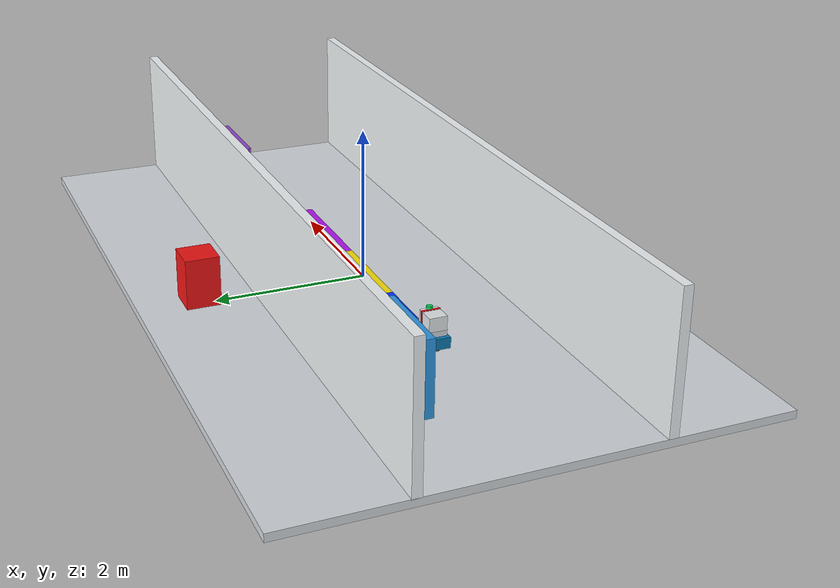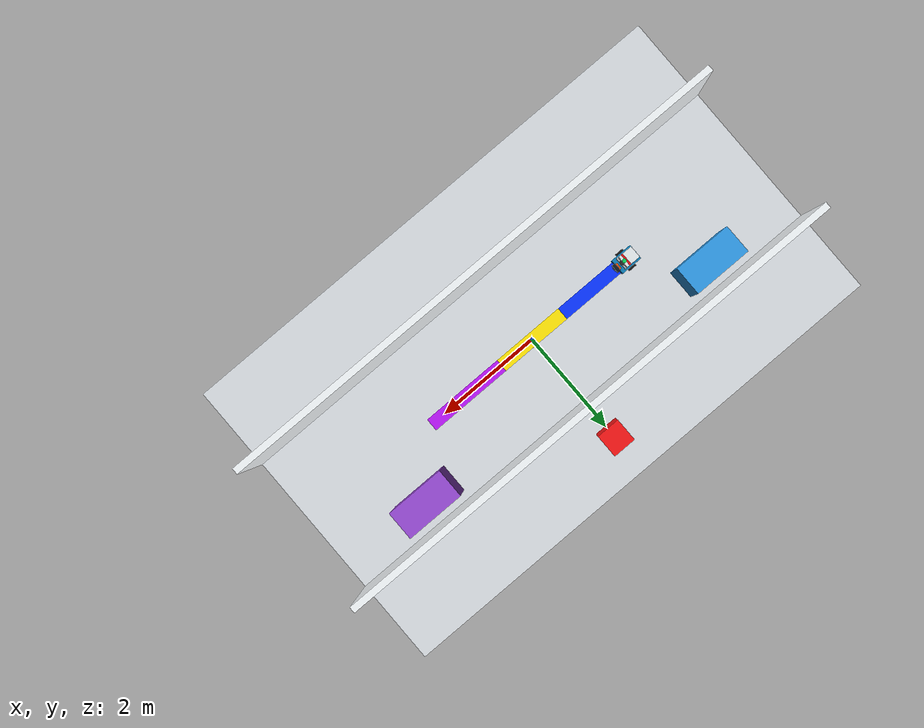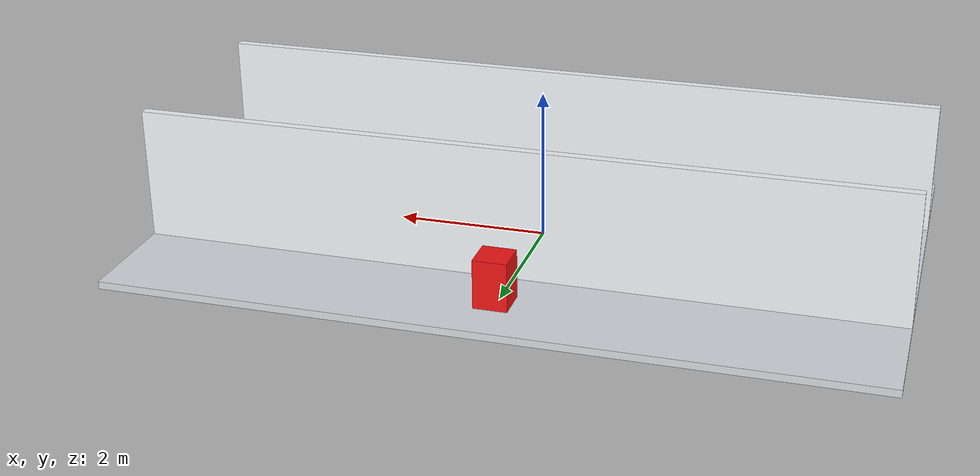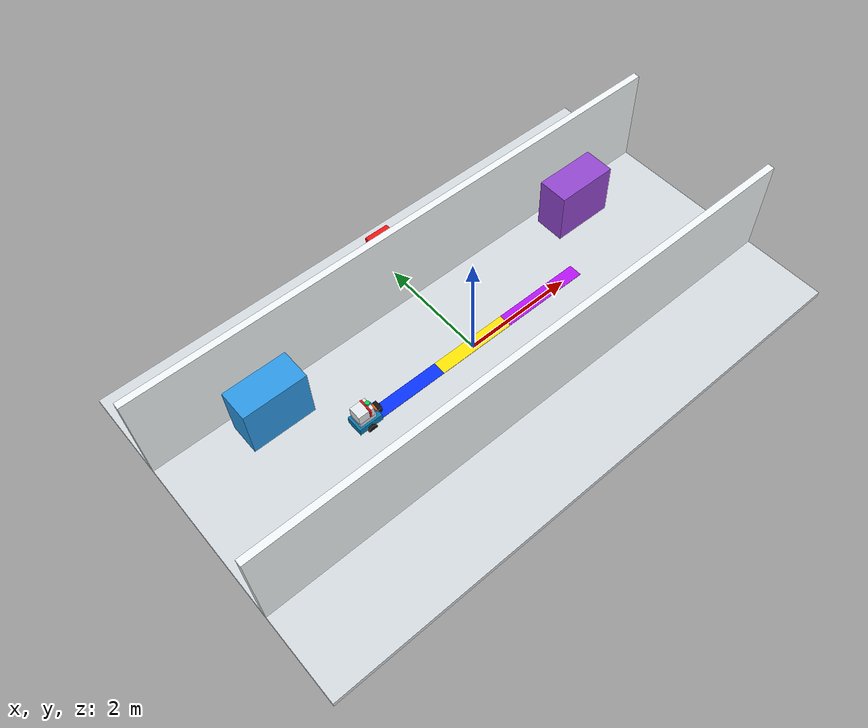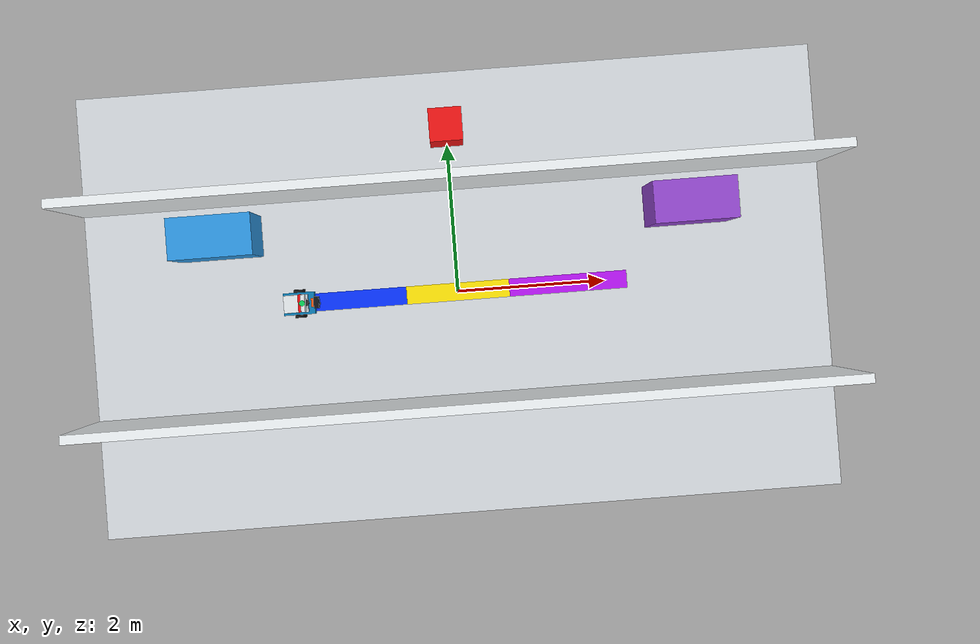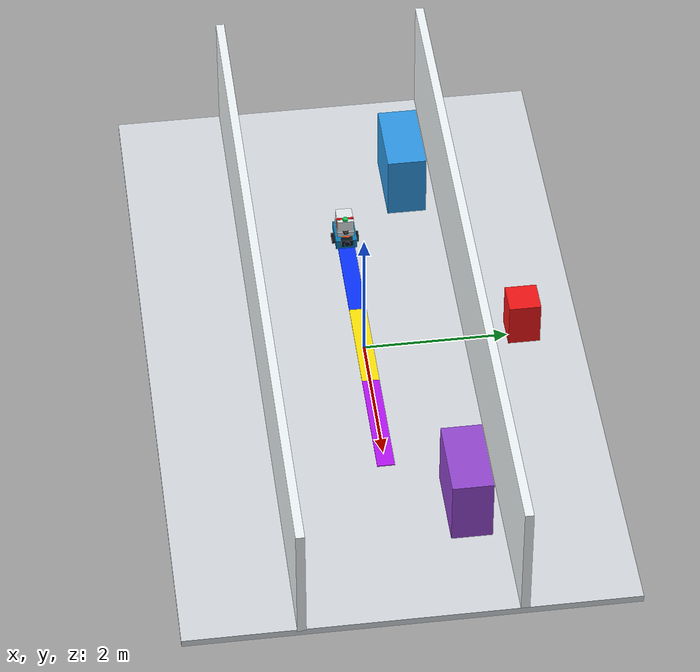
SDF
<?xml version="1.0"?>
<sdf version="1.9">
  <world name="flyto_atomic_color_route_lab">
    <physics name="default_physics" type="dart">
      <max_step_size>0.001</max_step_size>
      <real_time_factor>1.0</real_time_factor>
    </physics>
    <gravity>0 0 -9.80665</gravity>

    <plugin filename="gz-sim-physics-system"
            name="gz::sim::systems::Physics"/>
    <plugin filename="gz-sim-user-commands-system"
            name="gz::sim::systems::UserCommands"/>
    <plugin filename="gz-sim-scene-broadcaster-system"
            name="gz::sim::systems::SceneBroadcaster"/>
    <plugin filename="gz-sim-sensors-system"
            name="gz::sim::systems::Sensors">
      <render_engine>ogre2</render_engine>
    </plugin>

    <scene>
      <ambient>0.82 0.82 0.82 1</ambient>
      <background>0.94 0.96 0.98 1</background>
      <shadows>false</shadows>
      <grid>true</grid>
    </scene>
    <light name="route_light" type="directional">
      <cast_shadows>false</cast_shadows>
      <pose>0 0 8 0 0 0</pose>
      <diffuse>1 1 1 1</diffuse>
      <specular>0.2 0.2 0.2 1</specular>
      <direction>0.1 0.1 -1</direction>
    </light>

    <model name="route_floor">
      <static>true</static>
      <link name="floor">
        <collision name="collision">
          <geometry><box><size>10 6 0.10</size></box></geometry>
        </collision>
        <visual name="visual">
          <geometry><box><size>10 6 0.10</size></box></geometry>
          <material>
            <ambient>0.68 0.70 0.72 1</ambient>
            <diffuse>0.84 0.86 0.88 1</diffuse>
          </material>
        </visual>
      </link>
    </model>

    <model name="route_blue">
      <static>true</static>
      <pose>-1.5 0 0.056 0 0 0</pose>
      <link name="line">
        <visual name="visual">
          <geometry><box><size>1.6 0.24 0.012</size></box></geometry>
          <material>
            <ambient>0.02 0.12 0.82 1</ambient>
            <diffuse>0.03 0.20 1.0 1</diffuse>
          </material>
        </visual>
      </link>
    </model>
    <model name="route_yellow">
      <static>true</static>
      <pose>0 0 0.056 0 0 0</pose>
      <link name="line">
        <visual name="visual">
          <geometry><box><size>1.4 0.24 0.012</size></box></geometry>
          <material>
            <ambient>0.86 0.68 0.01 1</ambient>
            <diffuse>1.0 0.90 0.02 1</diffuse>
          </material>
        </visual>
      </link>
    </model>
    <model name="route_purple">
      <static>true</static>
      <pose>1.5 0 0.056 0 0 0</pose>
      <link name="line">
        <visual name="visual">
          <geometry><box><size>1.6 0.24 0.012</size></box></geometry>
          <material>
            <ambient>0.46 0.04 0.68 1</ambient>
            <diffuse>0.72 0.08 0.96 1</diffuse>
          </material>
        </visual>
      </link>
    </model>

    <model name="hospital_corridor">
      <static>true</static>
      <link name="north_wall">
        <pose>0 1.45 0.9 0 0 0</pose>
        <collision name="collision">
          <geometry><box><size>10 0.12 1.8</size></box></geometry>
        </collision>
        <visual name="visual">
          <geometry><box><size>10 0.12 1.8</size></box></geometry>
          <material>
            <ambient>0.88 0.91 0.93 1</ambient>
            <diffuse>0.95 0.97 0.98 1</diffuse>
          </material>
        </visual>
      </link>
      <link name="south_wall">
        <pose>0 -1.45 0.9 0 0 0</pose>
        <collision name="collision">
          <geometry><box><size>10 0.12 1.8</size></box></geometry>
        </collision>
        <visual name="visual">
          <geometry><box><size>10 0.12 1.8</size></box></geometry>
          <material>
            <ambient>0.88 0.91 0.93 1</ambient>
            <diffuse>0.95 0.97 0.98 1</diffuse>
          </material>
        </visual>
      </link>
    </model>

    <model name="pharmacy_counter">
      <static>true</static>
      <pose>-3.15 0.95 0.5 0 0 0</pose>
      <link name="counter">
        <collision name="collision">
          <geometry><box><size>1.1 0.55 1.0</size></box></geometry>
        </collision>
        <visual name="visual">
          <geometry><box><size>1.1 0.55 1.0</size></box></geometry>
          <material>
            <ambient>0.14 0.45 0.72 1</ambient>
            <diffuse>0.18 0.60 0.90 1</diffuse>
          </material>
        </visual>
      </link>
    </model>

    <model name="nurse_station_counter">
      <static>true</static>
      <pose>3.15 0.95 0.5 0 0 0</pose>
      <link name="counter">
        <collision name="collision">
          <geometry><box><size>1.1 0.55 1.0</size></box></geometry>
        </collision>
        <visual name="visual">
          <geometry><box><size>1.1 0.55 1.0</size></box></geometry>
          <material>
            <ambient>0.36 0.16 0.58 1</ambient>
            <diffuse>0.58 0.28 0.82 1</diffuse>
          </material>
        </visual>
      </link>
    </model>

    <model name="lab_obstacle">
      <static>false</static>
      <allow_auto_disable>false</allow_auto_disable>
      <pose>0 2.2 0.35 0 0 0</pose>
      <link name="obstacle">
        <inertial>
          <mass>25.0</mass>
          <inertia>
            <ixx>1.4242</ixx>
            <iyy>1.4242</iyy>
            <izz>0.8067</izz>
            <ixy>0</ixy>
            <ixz>0</ixz>
            <iyz>0</iyz>
          </inertia>
        </inertial>
        <collision name="collision">
          <geometry><box><size>0.44 0.44 0.70</size></box></geometry>
          <surface>
            <friction>
              <ode>
                <mu>1.0</mu>
                <mu2>1.0</mu2>
              </ode>
            </friction>
          </surface>
        </collision>
        <visual name="visual">
          <geometry><box><size>0.44 0.44 0.70</size></box></geometry>
          <material>
            <ambient>0.72 0.04 0.04 1</ambient>
            <diffuse>0.95 0.08 0.08 1</diffuse>
          </material>
        </visual>
      </link>
    </model>

    <model name="lab_evidence_camera">
      <static>true</static>
      <pose>0 0 7.2 0 1.5708 0</pose>
      <link name="camera_link">
        <sensor name="overhead_camera" type="camera">
          <topic>/flyto/evidence/overhead</topic>
          <update_rate>4</update_rate>
          <always_on>true</always_on>
          <visualize>false</visualize>
          <camera>
            <horizontal_fov>1.22</horizontal_fov>
            <image>
              <width>960</width>
              <height>540</height>
              <format>R8G8B8</format>
            </image>
            <clip>
              <near>0.1</near>
              <far>20.0</far>
            </clip>
          </camera>
        </sensor>
      </link>
    </model>

    <model name="corridor_camera_a">
      <static>true</static>
      <pose>-1.00 -1.10 2.50 0 1.15 1.5708</pose>
      <link name="camera_link">
        <sensor name="zone_a_camera" type="camera">
          <topic>/flyto/evidence/zone_a</topic>
          <update_rate>8</update_rate>
          <always_on>true</always_on>
          <visualize>false</visualize>
          <camera>
            <horizontal_fov>1.50</horizontal_fov>
            <image>
              <width>960</width>
              <height>540</height>
              <format>R8G8B8</format>
            </image>
            <clip>
              <near>0.1</near>
              <far>12.0</far>
            </clip>
          </camera>
        </sensor>
      </link>
    </model>

    <model name="corridor_camera_b">
      <static>true</static>
      <pose>1.20 -1.10 2.50 0 1.15 1.5708</pose>
      <link name="camera_link">
        <sensor name="zone_b_camera" type="camera">
          <topic>/flyto/evidence/zone_b</topic>
          <update_rate>8</update_rate>
          <always_on>true</always_on>
          <visualize>false</visualize>
          <camera>
            <horizontal_fov>1.50</horizontal_fov>
            <image>
              <width>960</width>
              <height>540</height>
              <format>R8G8B8</format>
            </image>
            <clip>
              <near>0.1</near>
              <far>12.0</far>
            </clip>
          </camera>
        </sensor>
      </link>
    </model>

    <include>
      <uri>model://flyto_rover</uri>
      <name>flyto_rover</name>
      <pose>-2.15 0 0 0 0 0</pose>
    </include>
  </world>
</sdf>

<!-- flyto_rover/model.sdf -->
<sdf version="1.9">
  <model name="flyto_rover">
    <static>false</static>
    <self_collide>false</self_collide>

    <link name="base_link">
      <pose>0 0 0.14 0 0 0</pose>
      <inertial>
        <mass>8.0</mass>
        <inertia>
          <ixx>0.075</ixx>
          <iyy>0.135</iyy>
          <izz>0.195</izz>
          <ixy>0</ixy>
          <ixz>0</ixz>
          <iyz>0</iyz>
        </inertia>
      </inertial>
      <collision name="base_collision">
        <geometry>
          <box>
            <size>0.42 0.30 0.14</size>
          </box>
        </geometry>
      </collision>
      <visual name="base_visual">
        <geometry>
          <box>
            <size>0.42 0.30 0.14</size>
          </box>
        </geometry>
        <material>
          <ambient>0.04 0.28 0.42 1</ambient>
          <diffuse>0.04 0.48 0.70 1</diffuse>
          <specular>0.2 0.2 0.2 1</specular>
        </material>
      </visual>
      <visual name="payload_tray">
        <pose>-0.02 0 0.12 0 0 0</pose>
        <geometry>
          <box>
            <size>0.30 0.24 0.08</size>
          </box>
        </geometry>
        <material>
          <ambient>0.65 0.68 0.72 1</ambient>
          <diffuse>0.82 0.85 0.88 1</diffuse>
        </material>
      </visual>
      <visual name="locked_medication_container">
        <pose>-0.035 0 0.245 0 0 0</pose>
        <geometry>
          <box>
            <size>0.28 0.23 0.18</size>
          </box>
        </geometry>
        <material>
          <ambient>0.70 0.72 0.74 1</ambient>
          <diffuse>0.90 0.92 0.93 1</diffuse>
          <specular>0.35 0.35 0.35 1</specular>
        </material>
      </visual>
      <visual name="container_lock_band">
        <pose>0.035 0 0.245 0 0 0</pose>
        <geometry>
          <box>
            <size>0.035 0.238 0.19</size>
          </box>
        </geometry>
        <material>
          <ambient>0.65 0.03 0.04 1</ambient>
          <diffuse>0.92 0.05 0.06 1</diffuse>
        </material>
      </visual>
      <visual name="status_light">
        <pose>0.075 0 0.357 0 0 0</pose>
        <geometry>
          <cylinder>
            <radius>0.038</radius>
            <length>0.035</length>
          </cylinder>
        </geometry>
        <material>
          <ambient>0.02 0.58 0.24 1</ambient>
          <diffuse>0.03 0.82 0.34 1</diffuse>
          <emissive>0.01 0.36 0.12 1</emissive>
        </material>
      </visual>
      <visual name="camera_housing">
        <pose>0.235 0 0.075 0 0 0</pose>
        <geometry>
          <box>
            <size>0.07 0.16 0.105</size>
          </box>
        </geometry>
        <material>
          <ambient>0.025 0.035 0.045 1</ambient>
          <diffuse>0.06 0.08 0.10 1</diffuse>
          <specular>0.55 0.55 0.55 1</specular>
        </material>
      </visual>
      <visual name="camera_lens">
        <pose>0.273 0 0.075 0 1.5708 0</pose>
        <geometry>
          <cylinder>
            <radius>0.042</radius>
            <length>0.018</length>
          </cylinder>
        </geometry>
        <material>
          <ambient>0.01 0.03 0.07 1</ambient>
          <diffuse>0.02 0.08 0.18 1</diffuse>
          <specular>0.8 0.8 0.8 1</specular>
        </material>
      </visual>
      <visual name="direction_marker">
        <pose>0.19 0 0.105 0 0 0</pose>
        <geometry>
          <box>
            <size>0.04 0.12 0.04</size>
          </box>
        </geometry>
        <material>
          <ambient>0.9 0.25 0.05 1</ambient>
          <diffuse>1 0.35 0.05 1</diffuse>
        </material>
      </visual>
    </link>

    <link name="left_wheel">
      <pose>0 0.17 0.08 1.5708 0 0</pose>
      <inertial>
        <mass>0.6</mass>
        <inertia>
          <ixx>0.002</ixx>
          <iyy>0.002</iyy>
          <izz>0.001</izz>
          <ixy>0</ixy>
          <ixz>0</ixz>
          <iyz>0</iyz>
        </inertia>
      </inertial>
      <collision name="collision">
        <geometry>
          <cylinder>
            <radius>0.08</radius>
            <length>0.04</length>
          </cylinder>
        </geometry>
        <surface>
          <friction>
            <ode>
              <mu>1.0</mu>
              <mu2>1.0</mu2>
            </ode>
          </friction>
        </surface>
      </collision>
      <visual name="visual">
        <geometry>
          <cylinder>
            <radius>0.08</radius>
            <length>0.04</length>
          </cylinder>
        </geometry>
        <material>
          <ambient>0.03 0.03 0.03 1</ambient>
          <diffuse>0.08 0.08 0.08 1</diffuse>
        </material>
      </visual>
    </link>

    <link name="right_wheel">
      <pose>0 -0.17 0.08 1.5708 0 0</pose>
      <inertial>
        <mass>0.6</mass>
        <inertia>
          <ixx>0.002</ixx>
          <iyy>0.002</iyy>
          <izz>0.001</izz>
          <ixy>0</ixy>
          <ixz>0</ixz>
          <iyz>0</iyz>
        </inertia>
      </inertial>
      <collision name="collision">
        <geometry>
          <cylinder>
            <radius>0.08</radius>
            <length>0.04</length>
          </cylinder>
        </geometry>
        <surface>
          <friction>
            <ode>
              <mu>1.0</mu>
              <mu2>1.0</mu2>
            </ode>
          </friction>
        </surface>
      </collision>
      <visual name="visual">
        <geometry>
          <cylinder>
            <radius>0.08</radius>
            <length>0.04</length>
          </cylinder>
        </geometry>
        <material>
          <ambient>0.03 0.03 0.03 1</ambient>
          <diffuse>0.08 0.08 0.08 1</diffuse>
        </material>
      </visual>
    </link>

    <link name="rear_caster">
      <pose>-0.15 0 0.045 0 0 0</pose>
      <inertial>
        <mass>0.15</mass>
        <inertia>
          <ixx>0.0001</ixx>
          <iyy>0.0001</iyy>
          <izz>0.0001</izz>
          <ixy>0</ixy>
          <ixz>0</ixz>
          <iyz>0</iyz>
        </inertia>
      </inertial>
      <collision name="collision">
        <geometry>
          <sphere>
            <radius>0.045</radius>
          </sphere>
        </geometry>
        <surface>
          <friction>
            <ode>
              <mu>0.05</mu>
              <mu2>0.05</mu2>
            </ode>
          </friction>
        </surface>
      </collision>
      <visual name="visual">
        <geometry>
          <sphere>
            <radius>0.045</radius>
          </sphere>
        </geometry>
        <material>
          <ambient>0.12 0.12 0.12 1</ambient>
          <diffuse>0.2 0.2 0.2 1</diffuse>
        </material>
      </visual>
    </link>

    <link name="lidar_link">
      <pose>0.10 0 0.285 0 0 0</pose>
      <inertial>
        <mass>0.2</mass>
        <inertia>
          <ixx>0.0002</ixx>
          <iyy>0.0002</iyy>
          <izz>0.0002</izz>
          <ixy>0</ixy>
          <ixz>0</ixz>
          <iyz>0</iyz>
        </inertia>
      </inertial>
      <visual name="visual">
        <geometry>
          <cylinder>
            <radius>0.045</radius>
            <length>0.035</length>
          </cylinder>
        </geometry>
        <material>
          <ambient>0.08 0.08 0.08 1</ambient>
          <diffuse>0.16 0.16 0.16 1</diffuse>
        </material>
      </visual>
      <sensor name="front_lidar" type="gpu_lidar">
        <topic>/flyto/scan</topic>
        <gz_frame_id>lidar_link</gz_frame_id>
        <update_rate>10</update_rate>
        <always_on>true</always_on>
        <visualize>true</visualize>
        <lidar>
          <scan>
            <horizontal>
              <samples>360</samples>
              <resolution>1</resolution>
              <min_angle>-3.14159</min_angle>
              <max_angle>3.14159</max_angle>
            </horizontal>
          </scan>
          <range>
            <min>0.12</min>
            <max>8.0</max>
            <resolution>0.01</resolution>
          </range>
        </lidar>
      </sensor>
    </link>

    <link name="route_camera_link">
      <pose>0.32 0 0.30 0 1.5708 0</pose>
      <inertial>
        <mass>0.08</mass>
        <inertia>
          <ixx>0.00008</ixx>
          <iyy>0.00008</iyy>
          <izz>0.00008</izz>
          <ixy>0</ixy>
          <ixz>0</ixz>
          <iyz>0</iyz>
        </inertia>
      </inertial>
      <sensor name="route_camera" type="camera">
        <topic>/flyto/camera/image</topic>
        <update_rate>15</update_rate>
        <!-- The Nav2 lab does not consume video. Keep the optional camera
             demand-driven so it cannot starve safety-critical sensors. -->
        <always_on>false</always_on>
        <visualize>false</visualize>
        <camera>
          <horizontal_fov>1.20</horizontal_fov>
          <image>
            <width>160</width>
            <height>120</height>
            <format>R8G8B8</format>
          </image>
          <clip>
            <near>0.05</near>
            <far>1.0</far>
          </clip>
        </camera>
      </sensor>
    </link>

    <joint name="left_wheel_joint" type="revolute">
      <parent>base_link</parent>
      <child>left_wheel</child>
      <axis>
        <xyz expressed_in="__model__">0 1 0</xyz>
      </axis>
    </joint>
    <joint name="right_wheel_joint" type="revolute">
      <parent>base_link</parent>
      <child>right_wheel</child>
      <axis>
        <xyz expressed_in="__model__">0 1 0</xyz>
      </axis>
    </joint>
    <joint name="rear_caster_joint" type="ball">
      <parent>base_link</parent>
      <child>rear_caster</child>
    </joint>
    <joint name="lidar_joint" type="fixed">
      <parent>base_link</parent>
      <child>lidar_link</child>
    </joint>
    <joint name="route_camera_joint" type="fixed">
      <parent>base_link</parent>
      <child>route_camera_link</child>
    </joint>

    <plugin filename="gz-sim-diff-drive-system"
            name="gz::sim::systems::DiffDrive">
      <left_joint>left_wheel_joint</left_joint>
      <right_joint>right_wheel_joint</right_joint>
      <wheel_separation>0.34</wheel_separation>
      <wheel_radius>0.08</wheel_radius>
      <topic>/flyto/cmd_vel</topic>
      <odom_topic>/flyto/odom</odom_topic>
      <tf_topic>/flyto/tf</tf_topic>
      <frame_id>odom</frame_id>
      <child_frame_id>base_link</child_frame_id>
      <odom_publish_frequency>30</odom_publish_frequency>
    </plugin>
    <plugin filename="gz-sim-odometry-publisher-system"
            name="gz::sim::systems::OdometryPublisher">
      <odom_frame>world</odom_frame>
      <robot_base_frame>flyto_rover</robot_base_frame>
      <odom_topic>/flyto/ground_truth</odom_topic>
      <odom_publish_frequency>30</odom_publish_frequency>
      <dimensions>3</dimensions>
    </plugin>
  </model>
</sdf>
